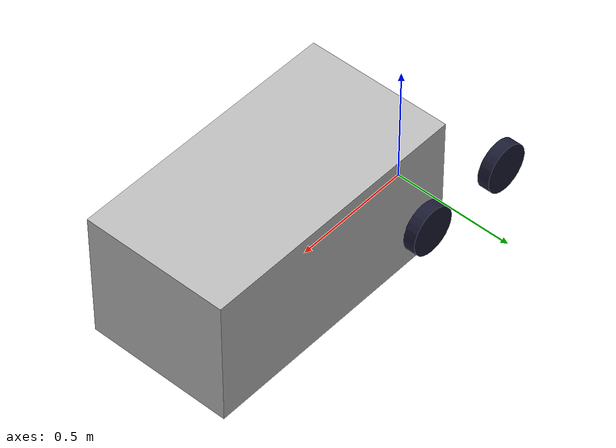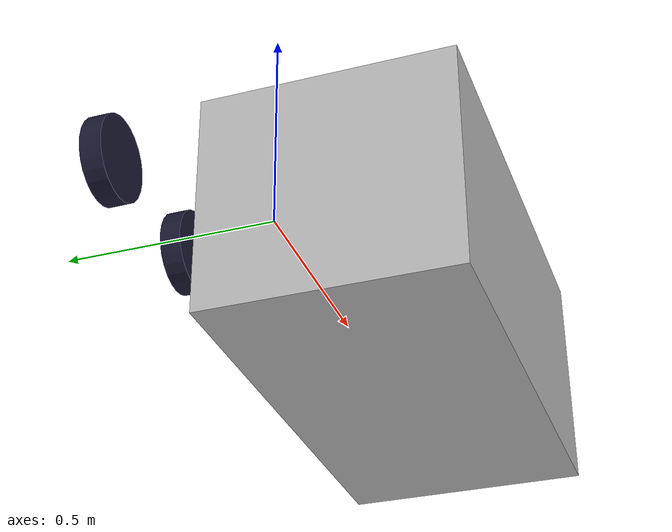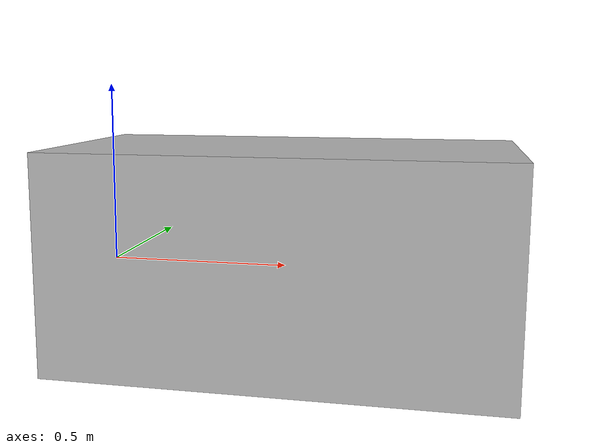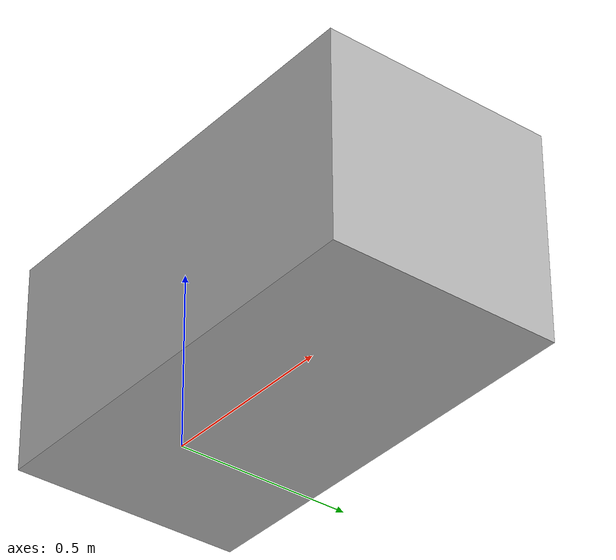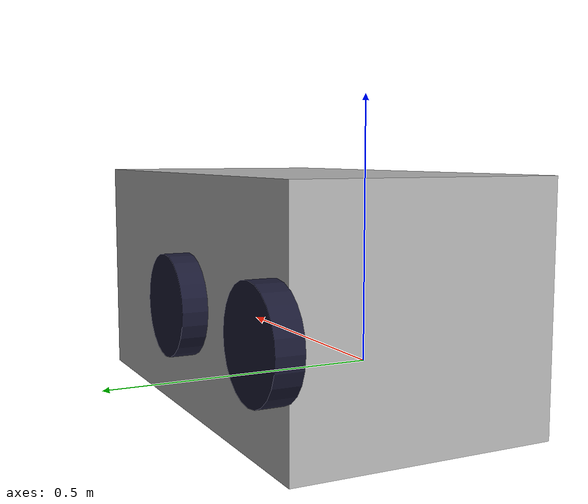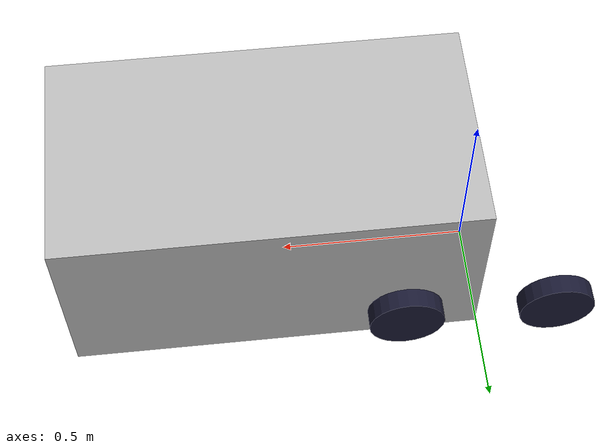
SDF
<?xml version='1.0'?>
<sdf version='1.4'>
    <model name="atom">
        <static>false</static>

        <!-- Make Chassis of Bot -->
        <link name="chassis">
            <pose>0.536448 -0.130302 0.066802 0 0 0</pose>
            <inertial>
                <mass>29.9371</mass>
                <inertia> <!-- inertias are tricky to compute -->
                    <!-- http://gazebosim.org/tutorials?tut=inertia&cat=build_robot -->
                    <ixx>1.699</ixx>       <!-- for a box: ixx = 0.083 * mass * (y*y + z*z) -->
                    <ixy>0.0</ixy>         <!-- for a box: ixy = 0 -->
                    <ixz>0.0</ixz>         <!-- for a box: ixz = 0 -->
                    <iyy>4.022</iyy>       <!-- for a box: iyy = 0.083 * mass * (x*x + z*z) -->
                    <iyz>0.0</iyz>         <!-- for a box: iyz = 0 -->
                    <izz>4.170</izz>       <!-- for a box: izz = 0.083 * mass * (x*x + y*y) -->
                </inertia>
            </inertial>
            <collision name="collision">
                <geometry>
                    <box>
                        <size> 1.143 0.6096 0.5588 </size>
                    </box>
                </geometry>
            </collision>

            <visual name="visual">
                <geometry>
                    <box>
                        <size> 1.143 0.6096 0.5588 </size>
                    </box>
                </geometry>

                <material>
                    <script>
                        <uri>model://atom/materials/scripts/repeated.material</uri>
                        <name>Atom</name>
                    </script>
                </material>

            </visual>

        </link>

        <!-- Middle Wheel Back -->
        <link name="middle_wheel_back">
            <pose> -0.2 0.3 0.1 0 1.5707 1.5707</pose>
            <inertial>
                <mass>5.0</mass>
                <inertia> <!-- inertias are tricky to compute -->
                    <!-- http://gazebosim.org/tutorials?tut=inertia&cat=build_robot -->
                    <ixx>0.1</ixx>
                    <ixy>0.0</ixy>
                    <ixz>0.0</ixz>
                    <iyy>0.1</iyy>
                    <iyz>0.0</iyz>
                    <izz>0.1</izz>
                </inertia>
            </inertial>
            <visual name="visual">
                <geometry>
                    <cylinder>
                        <radius> 0.1 </radius>
                        <length>0.05</length>
                    </cylinder>
                </geometry>
                <material> <!-- Wheel material -->
                    <ambient>0.1 0.1 0.1 1</ambient>
                    <diffuse>0.1 0.1 0.2 1</diffuse>
                    <specular>0 0 0 0</specular>
                    <emissive>0 0 0 1</emissive>
                </material> <!-- End wheel material -->
            </visual>
            <collision name="collision">
                <geometry>
                    <cylinder>
                        <radius> 0.1 </radius>
                        <length>0.05</length>
                    </cylinder>
                </geometry>
            </collision>

        </link>

        <!-- Right Wheel Front -->
        <link name="right_wheel_front">
            <pose> 0.2 0.3 0.1 0 1.5707 1.5707</pose>
            <inertial>
                <mass>5.0</mass>
                <inertia> <!-- inertias are tricky to compute -->
                    <!-- http://gazebosim.org/tutorials?tut=inertia&cat=build_robot -->
                    <ixx>0.1</ixx>
                    <ixy>0.0</ixy>
                    <ixz>0.0</ixz>
                    <iyy>0.1</iyy>
                    <iyz>0.0</iyz>
                    <izz>0.1</izz>
                </inertia>
            </inertial>
            <visual name="visual">
                <geometry>
                    <cylinder>
                        <radius> 0.1 </radius>
                        <length>0.05</length>
                    </cylinder>
                </geometry>
                <material> <!-- Wheel material -->
                    <ambient>0.1 0.1 0.1 1</ambient>
                    <diffuse>0.1 0.1 0.2 1</diffuse>
                    <specular>0 0 0 0</specular>
                    <emissive>0 0 0 1</emissive>
                </material> <!-- End wheel material -->
            </visual>
            <collision name="collision">
                <geometry>
                    <cylinder>
                        <radius> 0.1 </radius>
                        <length>0.05</length>
                    </cylinder>
                </geometry>
            </collision>
        </link>

        <!-- Left Wheel Front -->
        <link name="left_wheel_front">
            <pose> 0.2 -0.3 0.1 0 1.5707 1.5707</pose>
            <inertial>
                <mass>5.0</mass>
                <inertia> <!-- inertias are tricky to compute -->
                    <!-- http://gazebosim.org/tutorials?tut=inertia&cat=build_robot -->
                    <ixx>0.1</ixx>
                    <ixy>0.0</ixy>
                    <ixz>0.0</ixz>
                    <iyy>0.1</iyy>
                    <iyz>0.0</iyz>
                    <izz>0.1</izz>
                </inertia>
            </inertial>
            <visual name="visual">
                <geometry>
                    <cylinder>
                        <radius> 0.1 </radius>
                        <length>0.05</length>
                    </cylinder>
                </geometry>
                <material> <!-- Wheel material -->
                    <ambient>0.1 0.1 0.1 1</ambient>
                    <diffuse>0.1 0.1 0.2 1</diffuse>
                    <specular>0 0 0 0</specular>
                    <emissive>0 0 0 1</emissive>
                </material> <!-- End wheel material -->
            </visual>
            <collision name="collision">
                <geometry>
                    <cylinder>
                        <radius> 0.1 </radius>
                        <length>0.05</length>
                    </cylinder>
                </geometry>
            </collision>
        </link>

        <!-- Define Joints -->
        <!-- Middle Wheel Joint Back-->
        <joint type="revolute" name="middle_wheel_hinge_back">
            <pose>0 0 0.03 0 0 0</pose>
            <child>middle_wheel_back</child>
            <parent>chassis</parent>
            <axis>
                <xyz>0 1 0</xyz>
            </axis>
        </joint>

        <!-- Right Wheel Joint Front-->
        <joint type="revolute" name="right_wheel_hinge_front">
            <pose>0 0 0.03 0 0 0</pose>
            <child>right_wheel_front</child>
            <parent>chassis</parent>
            <axis>
                <xyz>0 1 0</xyz>
            </axis>
        </joint>

        <!-- Left Wheel Joint Front-->
        <joint type="revolute" name="left_wheel_hinge_front">
            <pose>0 0 -0.03 0 0 0</pose>
            <child>left_wheel_front</child>
            <parent>chassis</parent>
            <axis>
                <xyz>0 1 0</xyz>
            </axis>
        </joint>

        <!-- Camera -->
        <link name="camera_link">
            <pose>0.26 0 0.15 0 0 0</pose>

            <visual name="visual">
                <geometry>
                    <box>
                        <size>0.05 0.05 0.05</size>
                    </box>
                </geometry>
            </visual>

            <collision name="collision">
                <geometry>
                    <box>
                        <size>0.05 0.05 0.05</size>
                    </box>
                </geometry>
            </collision>

            <sensor type="camera" name="camera1">
                <update_rate>15.0</update_rate>
                <camera name="head">
                    <horizontal_fov>1.91986</horizontal_fov>
                    <image>
                        <width>2560</width>
                        <height>720</height>
                        <format>R8G8B8</format>
                    </image>
                    <clip>
                        <near>0.02</near>
                        <far>300</far>
                    </clip>
                </camera>
                <always_on>1</always_on>
                <visualize>1</visualize>
                <plugin name="camera_plugin" filename="libgazebo_ros_openni_kinect.so">
                    <baseline>0.2</baseline>
                    <alwaysOn>true</alwaysOn>
                    <updateRate>0.0</updateRate>
                    <cameraName>camera_ir</cameraName>
                    <imageTopicName>/camera/color/image_raw</imageTopicName>
                    <cameraInfoTopicName>/camera/color/camera_info</cameraInfoTopicName>
                    <depthImageTopicName>/camera/depth/image_raw</depthImageTopicName>
                    <depthImageCameraInfoTopicName>/camera/depth/camera_info</depthImageCameraInfoTopicName>
                    <pointCloudTopicName>/camera/depth/points</pointCloudTopicName>
                    <frameName>camera_link_optical</frameName>
                    <pointCloudCutoff>0.3</pointCloudCutoff>
                    <pointCloudCutoffMax>20</pointCloudCutoffMax>
                    <distortionK1>0</distortionK1>
                    <distortionK2>0</distortionK2>
                    <distortionK3>0</distortionK3>
                    <distortionT1>0</distortionT1>
                    <distortionT2>0</distortionT2>
                    <CxPrime>0</CxPrime>
                    <Cx>0</Cx>
                    <Cy>0</Cy>
                    <focalLength>0</focalLength>
                    <hackBaseline>0</hackBaseline>
                </plugin>
            </sensor>
        </link>

        <!-- Camera Joint -->
        <joint type="fixed" name="camera_joint" >
            <parent>chassis</parent>
            <child>camera_link</child>
            <axis>
                <xyz>0 1 0</xyz>
            </axis>
        </joint>

        <!-- Project center to the ground -->
        <link name="robot_footprint"></link>

        <!-- Plugin -->
        <plugin name="differential_drive_controller" filename="libgazebo_ros_diff_drive.so">
            <!-- Plugin update rate in Hz -->
            <updateRate>10.0</updateRate>
            <!-- Name of left joint, defaults to `left_joint` -->
            <leftJoint>left_wheel_hinge_front</leftJoint>
            <!-- Name of right joint, defaults to `right_joint` -->
            <rightJoint>right_wheel_hinge_front</rightJoint>
            <!-- The distance from the center of one wheel to the other, in meters, defaults to 0.34 m -->
            <wheelSeparation>0.3548</wheelSeparation>
            <!-- Diameter of the wheels, in meters, defaults to 0.15 m -->
            <wheelDiameter>0.314452</wheelDiameter>
            <!-- Wheel acceleration, in rad/s^2, defaults to 0.0 rad/s^2 -->
            <wheelAcceleration>1.0</wheelAcceleration>
            <!-- Maximum torque which the wheels can produce, in Nm, defaults to 5 Nm -->
            <wheelTorque>20</wheelTorque>
            <!-- Topic to receive geometry_msgs/Twist message commands, defaults to `cmd_vel` -->
            <commandTopic>cmd_vel</commandTopic>
            <!-- Topic to publish nav_msgs/Odometry messages, defaults to `odom` -->
            <odometryTopic>odom</odometryTopic>
            <!-- Odometry frame, defaults to `odom` -->
            <odometryFrame>odom</odometryFrame>
            <!-- Robot frame to calculate odometry from, defaults to `base_footprint` -->
            <robotBaseFrame>robot_footprint</robotBaseFrame>
            <!-- Odometry source, 0 for ENCODER, 1 for WORLD, defaults to WORLD -->
            <odometrySource>1</odometrySource>
            <!-- Set to true to publish transforms for the wheel links, defaults to false -->
            <publishWheelTF>true</publishWheelTF>
            <!-- Set to true to publish transforms for the odometry, defaults to true -->
            <publishOdom>true</publishOdom>
            <!-- Set to true to publish sensor_msgs/JointState on /joint_states for the wheel joints, defaults to false -->
            <publishWheelJointState>true</publishWheelJointState>
            <!-- Set to true to swap right and left wheels, defaults to true -->
            <legacyMode>false</legacyMode>
        </plugin>
    </model>
</sdf>
